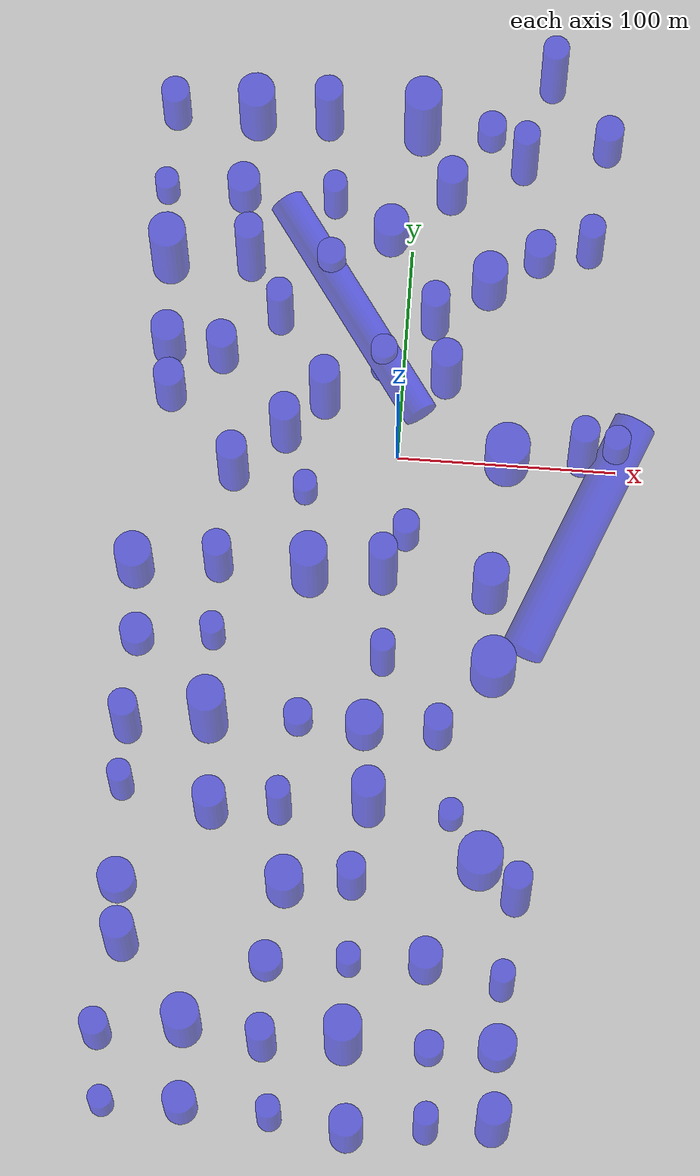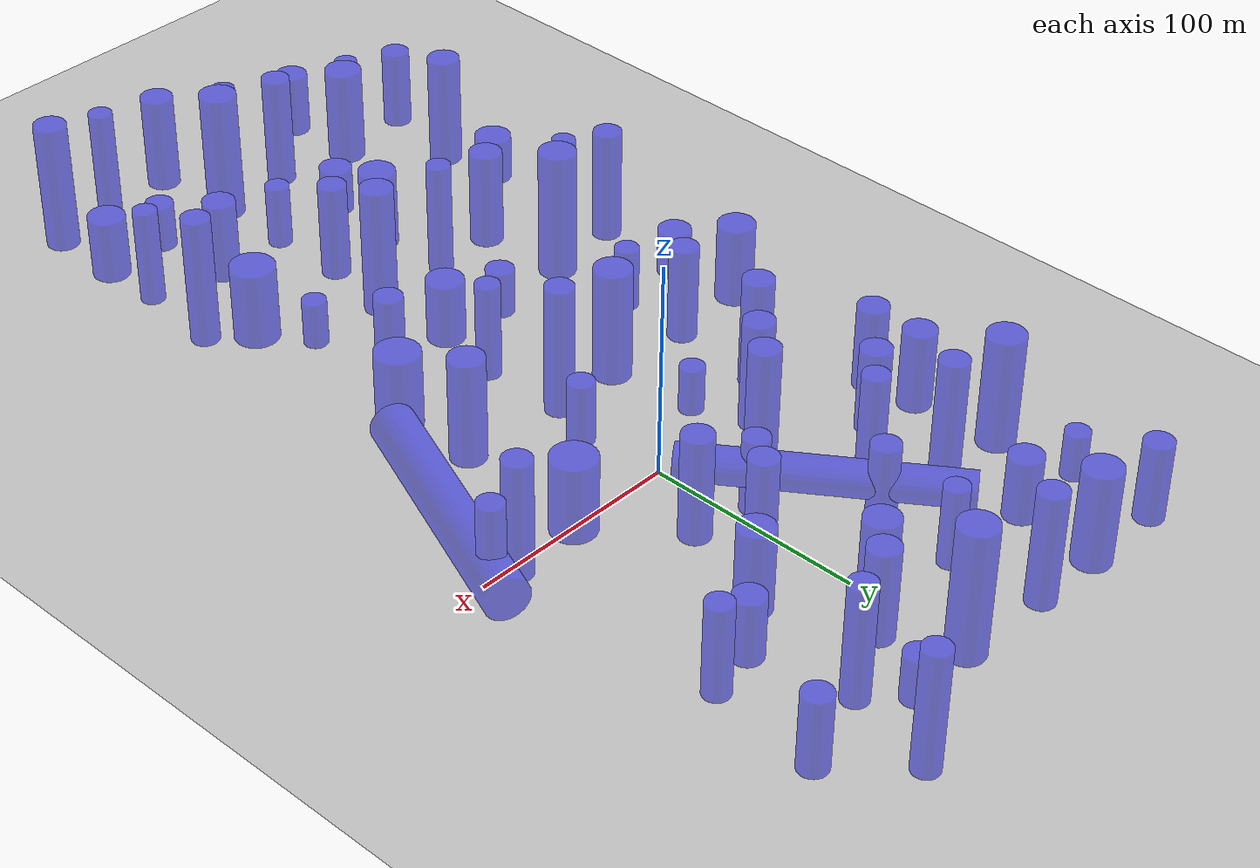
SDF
<sdf version="1.6">
 <world name="default">
  <model name="ground_plane">
   <static>1</static>
   <link name="link">
    <collision name="collision">
     <geometry><plane><normal>0 0 1</normal><size>1400.0 1400.0</size></plane></geometry>
     <surface><friction><ode><mu>100</mu><mu2>50</mu2></ode></friction></surface>
    </collision>
    <visual name="visual">
     <cast_shadows>0</cast_shadows>
     <geometry><plane><normal>0 0 1</normal><size>1400.0 1400.0</size></plane></geometry>
     <material>
      <script><uri>file://media/materials/scripts/gazebo.material</uri><name>Gazebo/Grey</name></script>
     </material>
    </visual>
   </link>
  </model>
  <model name="suav1">
   <link name="base_link">
    <inertial>
     <mass>0.1</mass>
     <inertia><ixx>1</ixx><ixy>0</ixy><ixz>0</ixz><iyy>1</iyy><iyz>0</iyz><izz>1</izz></inertia>
    </inertial>
    <collision name="base_link_fixed_joint_lump__body_link_collision">
     <geometry>
      <mesh>
       <scale>0.1 0.1 0.1</scale>
       <uri>package://simple_airplane_description/meshes/simple_airplane.dae</uri>
      </mesh>
     </geometry>
    </collision>
    <visual name="base_link_fixed_joint_lump__base_visual_visual">
     <geometry>
      <mesh>
       <scale>0.1 0.1 0.1</scale>
       <uri>package://simple_airplane_description/meshes/simple_airplane.dae</uri>
      </mesh>
     </geometry>
    </visual>
    <gravity>0</gravity>
    <gravity>0</gravity>
    <visual name="front_camera_housing">
     <pose>0 0 0.015 0 -0 0</pose>
     <geometry><box><size>0.04 0.05 0.04</size></box></geometry>
    </visual>
    <visual name="front_camera_lens">
     <pose>0.025 0 0.015 0 1.5708 0</pose>
     <geometry><cylinder><length>0.01</length><radius>0.012</radius></cylinder></geometry>
    </visual>
    <sensor name="front_camera" type="camera">
     <pose>0.03 0 0.015 0 0 0</pose>
     <always_on>true</always_on>
     <update_rate>15</update_rate>
     <visualize>false</visualize>
     <camera name="front_camera">
      <horizontal_fov>1.5707963267948966</horizontal_fov>
      <image><width>640</width><height>360</height><format>R8G8B8</format></image>
      <clip><near>0.05</near><far>300</far></clip>
     </camera>
     <plugin filename="libgazebo_ros_camera.so" name="front_camera_controller">
      <robotNamespace>/suav1</robotNamespace>
      <cameraName>front_camera</cameraName>
      <imageTopicName>image_raw</imageTopicName>
      <cameraInfoTopicName>camera_info</cameraInfoTopicName>
      <frameName>front_camera_optical_frame</frameName>
      <updateRate>15.0</updateRate>
     </plugin>
    </sensor>
   </link>
   <static>0</static>
   <plugin name="object_controller" filename="libgazebo_ros_planar_move_with_banking_and_pitching_plugin1.so">
    <commandTopic>cmd_vel</commandTopic>
    <odometryTopic>odom</odometryTopic>
    <odometryFrame>odom</odometryFrame>
    <odometryRate>80.0</odometryRate>
    <robotBaseFrame>base_link</robotBaseFrame>
    <robotNamespace>/suav1/</robotNamespace>
   </plugin>
   <pose>0 0 2 0 -0 0</pose>
  </model>
  <model name="static_obs1">
   <static>true</static>
   <pose>50 0 18.13715 0 0 0</pose>
   <link name="link">
    <inertial>
     <mass>1</mass>
     <inertia><ixx>0.145833</ixx><ixy>0</ixy><ixz>0</ixz><iyy>0.145833</iyy><iyz>0</iyz><izz>0.125</izz></inertia>
    </inertial>
    <collision name="collision">
     <geometry><cylinder><radius>10.1458</radius><length>36.2743</length></cylinder></geometry>
    </collision>
    <visual name="visual">
     <geometry><cylinder><radius>10.1458</radius><length>36.2743</length></cylinder></geometry>
     <material><ambient>0 0 1 1</ambient><diffuse>0 0 1 1</diffuse></material>
     <transparency>0.5</transparency>
    </visual>
   </link>
  </model>
  <model name="unit_cylinder_clone_1">
   <static>true</static>
   <pose>50.0229 -100.025 18.13715 0 0 0</pose>
   <link name="link">
    <inertial>
     <mass>1</mass>
     <inertia><ixx>0.145833</ixx><ixy>0</ixy><ixz>0</ixz><iyy>0.145833</iyy><iyz>0</iyz><izz>0.125</izz></inertia>
    </inertial>
    <collision name="collision">
     <geometry><cylinder><radius>10.1458</radius><length>36.2743</length></cylinder></geometry>
    </collision>
    <visual name="visual">
     <geometry><cylinder><radius>10.1458</radius><length>36.2743</length></cylinder></geometry>
     <material><ambient>0 0 1 1</ambient><diffuse>0 0 1 1</diffuse></material>
     <transparency>0.5</transparency>
    </visual>
   </link>
  </model>
  <model name="unit_cylinder_clone_3_clone_0">
   <static>true</static>
   <pose>50.0229 -190.025 18.13715 0 0 0</pose>
   <link name="link">
    <inertial>
     <mass>1</mass>
     <inertia><ixx>0.145833</ixx><ixy>0</ixy><ixz>0</ixz><iyy>0.145833</iyy><iyz>0</iyz><izz>0.125</izz></inertia>
    </inertial>
    <collision name="collision">
     <geometry><cylinder><radius>10.1458</radius><length>36.2743</length></cylinder></geometry>
    </collision>
    <visual name="visual">
     <geometry><cylinder><radius>10.1458</radius><length>36.2743</length></cylinder></geometry>
     <material><ambient>0 0 1 1</ambient><diffuse>0 0 1 1</diffuse></material>
     <transparency>0.5</transparency>
    </visual>
   </link>
  </model>
  <model name="static_obs13">
   <static>true</static>
   <pose>6.27 -38.06 15.0 0 0 0</pose>
   <link name="link">
    <gravity>false</gravity>
    <collision name="collision">
     <geometry><cylinder><radius>6.0</radius><length>30.0</length></cylinder></geometry>
    </collision>
    <visual name="visual">
     <geometry><cylinder><radius>6.0</radius><length>30.0</length></cylinder></geometry>
     <material><ambient>0 0 1 1</ambient><diffuse>0 0 1 1</diffuse></material>
     <transparency>0.5</transparency>
    </visual>
   </link>
  </model>
  <model name="static_obs14">
   <static>true</static>
   <pose>19.63 36.94 25.0 0 0 0</pose>
   <link name="link">
    <gravity>false</gravity>
    <collision name="collision">
     <geometry><cylinder><radius>7.0</radius><length>50.0</length></cylinder></geometry>
    </collision>
    <visual name="visual">
     <geometry><cylinder><radius>7.0</radius><length>50.0</length></cylinder></geometry>
     <material><ambient>0 0 1 1</ambient><diffuse>0 0 1 1</diffuse></material>
     <transparency>0.5</transparency>
    </visual>
   </link>
  </model>
  <model name="static_obs15">
   <static>true</static>
   <pose>46.3 -63.21 25.0 0 0 0</pose>
   <link name="link">
    <gravity>false</gravity>
    <collision name="collision">
     <geometry><cylinder><radius>8.0</radius><length>50.0</length></cylinder></geometry>
    </collision>
    <visual name="visual">
     <geometry><cylinder><radius>8.0</radius><length>50.0</length></cylinder></geometry>
     <material><ambient>0 0 1 1</ambient><diffuse>0 0 1 1</diffuse></material>
     <transparency>0.5</transparency>
    </visual>
   </link>
  </model>
  <model name="static_obs16">
   <static>true</static>
   <pose>84.32 3.23 28.0 0 0 0</pose>
   <link name="link">
    <gravity>false</gravity>
    <collision name="collision">
     <geometry><cylinder><radius>6.5</radius><length>56.0</length></cylinder></geometry>
    </collision>
    <visual name="visual">
     <geometry><cylinder><radius>6.5</radius><length>56.0</length></cylinder></geometry>
     <material><ambient>0 0 1 1</ambient><diffuse>0 0 1 1</diffuse></material>
     <transparency>0.5</transparency>
    </visual>
   </link>
  </model>
  <model name="static_obs17">
   <static>true</static>
   <pose>99.32 3.91 22.0 0 0 0</pose>
   <link name="link">
    <gravity>false</gravity>
    <collision name="collision">
     <geometry><cylinder><radius>6.0</radius><length>44.0</length></cylinder></geometry>
    </collision>
    <visual name="visual">
     <geometry><cylinder><radius>6.0</radius><length>44.0</length></cylinder></geometry>
     <material><ambient>0 0 1 1</ambient><diffuse>0 0 1 1</diffuse></material>
     <transparency>0.5</transparency>
    </visual>
   </link>
  </model>
  <model name="static_obs79">
   <static>true</static>
   <pose>87.27 154.48 18.0 0 0 0</pose>
   <link name="link">
    <gravity>false</gravity>
    <collision name="collision">
     <geometry><cylinder><radius>6.5</radius><length>36.0</length></cylinder></geometry>
    </collision>
    <visual name="visual">
     <geometry><cylinder><radius>6.5</radius><length>36.0</length></cylinder></geometry>
     <material><ambient>0 0 1 1</ambient><diffuse>0 0 1 1</diffuse></material>
     <transparency>0.5</transparency>
    </visual>
   </link>
  </model>
  <model name="static_obs80">
   <static>true</static>
   <pose>82.03 103.76 22.0 0 0 0</pose>
   <link name="link">
    <gravity>false</gravity>
    <collision name="collision">
     <geometry><cylinder><radius>6.0</radius><length>44.0</length></cylinder></geometry>
    </collision>
    <visual name="visual">
     <geometry><cylinder><radius>6.0</radius><length>44.0</length></cylinder></geometry>
     <material><ambient>0 0 1 1</ambient><diffuse>0 0 1 1</diffuse></material>
     <transparency>0.5</transparency>
    </visual>
   </link>
  </model>
  <model name="static_obs81">
   <static>true</static>
   <pose>49.15 142.43 28.0 0 0 0</pose>
   <link name="link">
    <gravity>false</gravity>
    <collision name="collision">
     <geometry><cylinder><radius>6.0</radius><length>56.0</length></cylinder></geometry>
    </collision>
    <visual name="visual">
     <geometry><cylinder><radius>6.0</radius><length>56.0</length></cylinder></geometry>
     <material><ambient>0 0 1 1</ambient><diffuse>0 0 1 1</diffuse></material>
     <transparency>0.5</transparency>
    </visual>
   </link>
  </model>
  <model name="static_obs82">
   <static>true</static>
   <pose>58.9 98.52 15.0 0 0 0</pose>
   <link name="link">
    <gravity>false</gravity>
    <collision name="collision">
     <geometry><cylinder><radius>7.0</radius><length>30.0</length></cylinder></geometry>
    </collision>
    <visual name="visual">
     <geometry><cylinder><radius>7.0</radius><length>30.0</length></cylinder></geometry>
     <material><ambient>0 0 1 1</ambient><diffuse>0 0 1 1</diffuse></material>
     <transparency>0.5</transparency>
    </visual>
   </link>
  </model>
  <model name="static_obs83">
   <static>true</static>
   <pose>16.29 126.5 22.0 0 0 0</pose>
   <link name="link">
    <gravity>false</gravity>
    <collision name="collision">
     <geometry><cylinder><radius>7.0</radius><length>44.0</length></cylinder></geometry>
    </collision>
    <visual name="visual">
     <geometry><cylinder><radius>7.0</radius><length>44.0</length></cylinder></geometry>
     <material><ambient>0 0 1 1</ambient><diffuse>0 0 1 1</diffuse></material>
     <transparency>0.5</transparency>
    </visual>
   </link>
  </model>
  <model name="static_obs84">
   <static>true</static>
   <pose>36.63 82.13 20.0 0 0 0</pose>
   <link name="link">
    <gravity>false</gravity>
    <collision name="collision">
     <geometry><cylinder><radius>8.0</radius><length>40.0</length></cylinder></geometry>
    </collision>
    <visual name="visual">
     <geometry><cylinder><radius>8.0</radius><length>40.0</length></cylinder></geometry>
     <material><ambient>0 0 1 1</ambient><diffuse>0 0 1 1</diffuse></material>
     <transparency>0.5</transparency>
    </visual>
   </link>
  </model>
  <model name="static_obs85">
   <static>true</static>
   <pose>-10.38 105.13 15.0 0 0 0</pose>
   <link name="link">
    <gravity>false</gravity>
    <collision name="collision">
     <geometry><cylinder><radius>8.0</radius><length>30.0</length></cylinder></geometry>
    </collision>
    <visual name="visual">
     <geometry><cylinder><radius>8.0</radius><length>30.0</length></cylinder></geometry>
     <material><ambient>0 0 1 1</ambient><diffuse>0 0 1 1</diffuse></material>
     <transparency>0.5</transparency>
    </visual>
   </link>
  </model>
  <model name="static_obs86">
   <static>true</static>
   <pose>12.64 64.42 25.0 0 0 0</pose>
   <link name="link">
    <gravity>false</gravity>
    <collision name="collision">
     <geometry><cylinder><radius>6.5</radius><length>50.0</length></cylinder></geometry>
    </collision>
    <visual name="visual">
     <geometry><cylinder><radius>6.5</radius><length>50.0</length></cylinder></geometry>
     <material><ambient>0 0 1 1</ambient><diffuse>0 0 1 1</diffuse></material>
     <transparency>0.5</transparency>
    </visual>
   </link>
  </model>
  <model name="static_obs87">
   <static>true</static>
   <pose>-36.55 85.03 20.0 0 0 0</pose>
   <link name="link">
    <gravity>false</gravity>
    <collision name="collision">
     <geometry><cylinder><radius>6.5</radius><length>40.0</length></cylinder></geometry>
    </collision>
    <visual name="visual">
     <geometry><cylinder><radius>6.5</radius><length>40.0</length></cylinder></geometry>
     <material><ambient>0 0 1 1</ambient><diffuse>0 0 1 1</diffuse></material>
     <transparency>0.5</transparency>
    </visual>
   </link>
  </model>
  <model name="static_obs88">
   <static>true</static>
   <pose>-9.31 42.34 18.0 0 0 0</pose>
   <link name="link">
    <gravity>false</gravity>
    <collision name="collision">
     <geometry><cylinder><radius>6.0</radius><length>36.0</length></cylinder></geometry>
    </collision>
    <visual name="visual">
     <geometry><cylinder><radius>6.0</radius><length>36.0</length></cylinder></geometry>
     <material><ambient>0 0 1 1</ambient><diffuse>0 0 1 1</diffuse></material>
     <transparency>0.5</transparency>
    </visual>
   </link>
  </model>
  <model name="static_obs89">
   <static>true</static>
   <pose>-58.47 61.52 25.0 0 0 0</pose>
   <link name="link">
    <gravity>false</gravity>
    <collision name="collision">
     <geometry><cylinder><radius>6.0</radius><length>50.0</length></cylinder></geometry>
    </collision>
    <visual name="visual">
     <geometry><cylinder><radius>6.0</radius><length>50.0</length></cylinder></geometry>
     <material><ambient>0 0 1 1</ambient><diffuse>0 0 1 1</diffuse></material>
     <transparency>0.5</transparency>
    </visual>
   </link>
  </model>
  <model name="static_obs90">
   <static>true</static>
   <pose>-35.22 23.32 28.0 0 0 0</pose>
   <link name="link">
    <gravity>false</gravity>
    <collision name="collision">
     <geometry><cylinder><radius>7.0</radius><length>56.0</length></cylinder></geometry>
    </collision>
    <visual name="visual">
     <geometry><cylinder><radius>7.0</radius><length>56.0</length></cylinder></geometry>
     <material><ambient>0 0 1 1</ambient><diffuse>0 0 1 1</diffuse></material>
     <transparency>0.5</transparency>
    </visual>
   </link>
  </model>
  <model name="static_obs91">
   <static>true</static>
   <pose>-83.74 41.86 20.0 0 0 0</pose>
   <link name="link">
    <gravity>false</gravity>
    <collision name="collision">
     <geometry><cylinder><radius>7.0</radius><length>40.0</length></cylinder></geometry>
    </collision>
    <visual name="visual">
     <geometry><cylinder><radius>7.0</radius><length>40.0</length></cylinder></geometry>
     <material><ambient>0 0 1 1</ambient><diffuse>0 0 1 1</diffuse></material>
     <transparency>0.5</transparency>
    </visual>
   </link>
  </model>
  <model name="static_obs92">
   <static>true</static>
   <pose>-52.05 5.82 26.0 0 0 0</pose>
   <link name="link">
    <gravity>false</gravity>
    <collision name="collision">
     <geometry><cylinder><radius>7.0</radius><length>52.0</length></cylinder></geometry>
    </collision>
    <visual name="visual">
     <geometry><cylinder><radius>7.0</radius><length>52.0</length></cylinder></geometry>
     <material><ambient>0 0 1 1</ambient><diffuse>0 0 1 1</diffuse></material>
     <transparency>0.5</transparency>
    </visual>
   </link>
  </model>
  <model name="static_obs93">
   <static>true</static>
   <pose>-106.27 22.05 20.0 0 0 0</pose>
   <link name="link">
    <gravity>false</gravity>
    <collision name="collision">
     <geometry><cylinder><radius>7.0</radius><length>40.0</length></cylinder></geometry>
    </collision>
    <visual name="visual">
     <geometry><cylinder><radius>7.0</radius><length>40.0</length></cylinder></geometry>
     <material><ambient>0 0 1 1</ambient><diffuse>0 0 1 1</diffuse></material>
     <transparency>0.5</transparency>
    </visual>
   </link>
  </model>
  <model name="static_obs94">
   <static>true</static>
   <pose>-74.57 -14.0 26.0 0 0 0</pose>
   <link name="link">
    <gravity>false</gravity>
    <collision name="collision">
     <geometry><cylinder><radius>7.0</radius><length>52.0</length></cylinder></geometry>
    </collision>
    <visual name="visual">
     <geometry><cylinder><radius>7.0</radius><length>52.0</length></cylinder></geometry>
     <material><ambient>0 0 1 1</ambient><diffuse>0 0 1 1</diffuse></material>
     <transparency>0.5</transparency>
    </visual>
   </link>
  </model>
  <model name="static_obs95">
   <static>true</static>
   <pose>-110.87 -308.64 11.0 0 0 0</pose>
   <link name="link">
    <gravity>false</gravity>
    <collision name="collision">
     <geometry><cylinder><radius>5.5</radius><length>22.0</length></cylinder></geometry>
    </collision>
    <visual name="visual">
     <geometry><cylinder><radius>5.5</radius><length>22.0</length></cylinder></geometry>
     <material><ambient>0 0 1 1</ambient><diffuse>0 0 1 1</diffuse></material>
     <transparency>0.5</transparency>
    </visual>
   </link>
  </model>
  <model name="static_obs96">
   <static>true</static>
   <pose>-75.55 -307.74 15.0 0 0 0</pose>
   <link name="link">
    <gravity>false</gravity>
    <collision name="collision">
     <geometry><cylinder><radius>7.5</radius><length>30.0</length></cylinder></geometry>
    </collision>
    <visual name="visual">
     <geometry><cylinder><radius>7.5</radius><length>30.0</length></cylinder></geometry>
     <material><ambient>0 0 1 1</ambient><diffuse>0 0 1 1</diffuse></material>
     <transparency>0.5</transparency>
    </visual>
   </link>
  </model>
  <model name="static_obs97">
   <static>true</static>
   <pose>-35.9 -310.2 19.0 0 0 0</pose>
   <link name="link">
    <gravity>false</gravity>
    <collision name="collision">
     <geometry><cylinder><radius>5.5</radius><length>38.0</length></cylinder></geometry>
    </collision>
    <visual name="visual">
     <geometry><cylinder><radius>5.5</radius><length>38.0</length></cylinder></geometry>
     <material><ambient>0 0 1 1</ambient><diffuse>0 0 1 1</diffuse></material>
     <transparency>0.5</transparency>
    </visual>
   </link>
  </model>
  <model name="static_obs98">
   <static>true</static>
   <pose>-1.21 -315.36 23.0 0 0 0</pose>
   <link name="link">
    <gravity>false</gravity>
    <collision name="collision">
     <geometry><cylinder><radius>7.5</radius><length>46.0</length></cylinder></geometry>
    </collision>
    <visual name="visual">
     <geometry><cylinder><radius>7.5</radius><length>46.0</length></cylinder></geometry>
     <material><ambient>0 0 1 1</ambient><diffuse>0 0 1 1</diffuse></material>
     <transparency>0.5</transparency>
    </visual>
   </link>
  </model>
  <model name="static_obs99">
   <static>true</static>
   <pose>33.71 -311.24 27.0 0 0 0</pose>
   <link name="link">
    <gravity>false</gravity>
    <collision name="collision">
     <geometry><cylinder><radius>5.5</radius><length>54.0</length></cylinder></geometry>
    </collision>
    <visual name="visual">
     <geometry><cylinder><radius>5.5</radius><length>54.0</length></cylinder></geometry>
     <material><ambient>0 0 1 1</ambient><diffuse>0 0 1 1</diffuse></material>
     <transparency>0.5</transparency>
    </visual>
   </link>
  </model>
  <model name="static_obs100">
   <static>true</static>
   <pose>63.25 -308.37 31.0 0 0 0</pose>
   <link name="link">
    <gravity>false</gravity>
    <collision name="collision">
     <geometry><cylinder><radius>7.5</radius><length>62.0</length></cylinder></geometry>
    </collision>
    <visual name="visual">
     <geometry><cylinder><radius>7.5</radius><length>62.0</length></cylinder></geometry>
     <material><ambient>0 0 1 1</ambient><diffuse>0 0 1 1</diffuse></material>
     <transparency>0.5</transparency>
    </visual>
   </link>
  </model>
  <model name="static_obs112">
   <static>true</static>
   <pose>-115.51 -277.75 19.0 0 0 0</pose>
   <link name="link">
    <gravity>false</gravity>
    <collision name="collision">
     <geometry><cylinder><radius>6.5</radius><length>38.0</length></cylinder></geometry>
    </collision>
    <visual name="visual">
     <geometry><cylinder><radius>6.5</radius><length>38.0</length></cylinder></geometry>
     <material><ambient>0 0 1 1</ambient><diffuse>0 0 1 1</diffuse></material>
     <transparency>0.5</transparency>
    </visual>
   </link>
  </model>
  <model name="static_obs113">
   <static>true</static>
   <pose>-77.39 -272.2 23.0 0 0 0</pose>
   <link name="link">
    <gravity>false</gravity>
    <collision name="collision">
     <geometry><cylinder><radius>8.5</radius><length>46.0</length></cylinder></geometry>
    </collision>
    <visual name="visual">
     <geometry><cylinder><radius>8.5</radius><length>46.0</length></cylinder></geometry>
     <material><ambient>0 0 1 1</ambient><diffuse>0 0 1 1</diffuse></material>
     <transparency>0.5</transparency>
    </visual>
   </link>
  </model>
  <model name="static_obs114">
   <static>true</static>
   <pose>-41.48 -278.18 27.0 0 0 0</pose>
   <link name="link">
    <gravity>false</gravity>
    <collision name="collision">
     <geometry><cylinder><radius>6.5</radius><length>54.0</length></cylinder></geometry>
    </collision>
    <visual name="visual">
     <geometry><cylinder><radius>6.5</radius><length>54.0</length></cylinder></geometry>
     <material><ambient>0 0 1 1</ambient><diffuse>0 0 1 1</diffuse></material>
     <transparency>0.5</transparency>
    </visual>
   </link>
  </model>
  <model name="static_obs115">
   <static>true</static>
   <pose>-5.31 -275.32 31.0 0 0 0</pose>
   <link name="link">
    <gravity>false</gravity>
    <collision name="collision">
     <geometry><cylinder><radius>8.5</radius><length>62.0</length></cylinder></geometry>
    </collision>
    <visual name="visual">
     <geometry><cylinder><radius>8.5</radius><length>62.0</length></cylinder></geometry>
     <material><ambient>0 0 1 1</ambient><diffuse>0 0 1 1</diffuse></material>
     <transparency>0.5</transparency>
    </visual>
   </link>
  </model>
  <model name="static_obs116">
   <static>true</static>
   <pose>32.82 -275.02 11.0 0 0 0</pose>
   <link name="link">
    <gravity>false</gravity>
    <collision name="collision">
     <geometry><cylinder><radius>6.5</radius><length>22.0</length></cylinder></geometry>
    </collision>
    <visual name="visual">
     <geometry><cylinder><radius>6.5</radius><length>22.0</length></cylinder></geometry>
     <material><ambient>0 0 1 1</ambient><diffuse>0 0 1 1</diffuse></material>
     <transparency>0.5</transparency>
    </visual>
   </link>
  </model>
  <model name="static_obs117">
   <static>true</static>
   <pose>63.17 -273.44 15.0 0 0 0</pose>
   <link name="link">
    <gravity>false</gravity>
    <collision name="collision">
     <geometry><cylinder><radius>8.5</radius><length>30.0</length></cylinder></geometry>
    </collision>
    <visual name="visual">
     <geometry><cylinder><radius>8.5</radius><length>30.0</length></cylinder></geometry>
     <material><ambient>0 0 1 1</ambient><diffuse>0 0 1 1</diffuse></material>
     <transparency>0.5</transparency>
    </visual>
   </link>
  </model>
  <model name="static_obs122">
   <static>true</static>
   <pose>-107.83 -236.15 27.0 0 0 0</pose>
   <link name="link">
    <gravity>false</gravity>
    <collision name="collision">
     <geometry><cylinder><radius>7.5</radius><length>54.0</length></cylinder></geometry>
    </collision>
    <visual name="visual">
     <geometry><cylinder><radius>7.5</radius><length>54.0</length></cylinder></geometry>
     <material><ambient>0 0 1 1</ambient><diffuse>0 0 1 1</diffuse></material>
     <transparency>0.5</transparency>
    </visual>
   </link>
  </model>
  <model name="static_obs123">
   <static>true</static>
   <pose>-42.58 -240.64 11.0 0 0 0</pose>
   <link name="link">
    <gravity>false</gravity>
    <collision name="collision">
     <geometry><cylinder><radius>7.5</radius><length>22.0</length></cylinder></geometry>
    </collision>
    <visual name="visual">
     <geometry><cylinder><radius>7.5</radius><length>22.0</length></cylinder></geometry>
     <material><ambient>0 0 1 1</ambient><diffuse>0 0 1 1</diffuse></material>
     <transparency>0.5</transparency>
    </visual>
   </link>
  </model>
  <model name="static_obs124">
   <static>true</static>
   <pose>-5.61 -238.23 15.0 0 0 0</pose>
   <link name="link">
    <gravity>false</gravity>
    <collision name="collision">
     <geometry><cylinder><radius>5.5</radius><length>30.0</length></cylinder></geometry>
    </collision>
    <visual name="visual">
     <geometry><cylinder><radius>5.5</radius><length>30.0</length></cylinder></geometry>
     <material><ambient>0 0 1 1</ambient><diffuse>0 0 1 1</diffuse></material>
     <transparency>0.5</transparency>
    </visual>
   </link>
  </model>
  <model name="static_obs125">
   <static>true</static>
   <pose>28.71 -237.13 19.0 0 0 0</pose>
   <link name="link">
    <gravity>false</gravity>
    <collision name="collision">
     <geometry><cylinder><radius>7.5</radius><length>38.0</length></cylinder></geometry>
    </collision>
    <visual name="visual">
     <geometry><cylinder><radius>7.5</radius><length>38.0</length></cylinder></geometry>
     <material><ambient>0 0 1 1</ambient><diffuse>0 0 1 1</diffuse></material>
     <transparency>0.5</transparency>
    </visual>
   </link>
  </model>
  <model name="static_obs126">
   <static>true</static>
   <pose>63.3 -244.5 23.0 0 0 0</pose>
   <link name="link">
    <gravity>false</gravity>
    <collision name="collision">
     <geometry><cylinder><radius>5.5</radius><length>46.0</length></cylinder></geometry>
    </collision>
    <visual name="visual">
     <geometry><cylinder><radius>5.5</radius><length>46.0</length></cylinder></geometry>
     <material><ambient>0 0 1 1</ambient><diffuse>0 0 1 1</diffuse></material>
     <transparency>0.5</transparency>
    </visual>
   </link>
  </model>
  <model name="static_obs130">
   <static>true</static>
   <pose>-111.97 -208.54 11.0 0 0 0</pose>
   <link name="link">
    <gravity>false</gravity>
    <collision name="collision">
     <geometry><cylinder><radius>8.5</radius><length>22.0</length></cylinder></geometry>
    </collision>
    <visual name="visual">
     <geometry><cylinder><radius>8.5</radius><length>22.0</length></cylinder></geometry>
     <material><ambient>0 0 1 1</ambient><diffuse>0 0 1 1</diffuse></material>
     <transparency>0.5</transparency>
    </visual>
   </link>
  </model>
  <model name="static_obs131">
   <static>true</static>
   <pose>-36.71 -205.63 19.0 0 0 0</pose>
   <link name="link">
    <gravity>false</gravity>
    <collision name="collision">
     <geometry><cylinder><radius>8.5</radius><length>38.0</length></cylinder></geometry>
    </collision>
    <visual name="visual">
     <geometry><cylinder><radius>8.5</radius><length>38.0</length></cylinder></geometry>
     <material><ambient>0 0 1 1</ambient><diffuse>0 0 1 1</diffuse></material>
     <transparency>0.5</transparency>
    </visual>
   </link>
  </model>
  <model name="static_obs132">
   <static>true</static>
   <pose>-6.84 -201.93 23.0 0 0 0</pose>
   <link name="link">
    <gravity>false</gravity>
    <collision name="collision">
     <geometry><cylinder><radius>6.5</radius><length>46.0</length></cylinder></geometry>
    </collision>
    <visual name="visual">
     <geometry><cylinder><radius>6.5</radius><length>46.0</length></cylinder></geometry>
     <material><ambient>0 0 1 1</ambient><diffuse>0 0 1 1</diffuse></material>
     <transparency>0.5</transparency>
    </visual>
   </link>
  </model>
  <model name="static_obs133">
   <static>true</static>
   <pose>66.97 -204.44 31.0 0 0 0</pose>
   <link name="link">
    <gravity>false</gravity>
    <collision name="collision">
     <geometry><cylinder><radius>6.5</radius><length>62.0</length></cylinder></geometry>
    </collision>
    <visual name="visual">
     <geometry><cylinder><radius>6.5</radius><length>62.0</length></cylinder></geometry>
     <material><ambient>0 0 1 1</ambient><diffuse>0 0 1 1</diffuse></material>
     <transparency>0.5</transparency>
    </visual>
   </link>
  </model>
  <model name="static_obs138">
   <static>true</static>
   <pose>-113.57 -164.22 19.0 0 0 0</pose>
   <link name="link">
    <gravity>false</gravity>
    <collision name="collision">
     <geometry><cylinder><radius>5.5</radius><length>38.0</length></cylinder></geometry>
    </collision>
    <visual name="visual">
     <geometry><cylinder><radius>5.5</radius><length>38.0</length></cylinder></geometry>
     <material><ambient>0 0 1 1</ambient><diffuse>0 0 1 1</diffuse></material>
     <transparency>0.5</transparency>
    </visual>
   </link>
  </model>
  <model name="static_obs139">
   <static>true</static>
   <pose>-72.51 -172.8 23.0 0 0 0</pose>
   <link name="link">
    <gravity>false</gravity>
    <collision name="collision">
     <geometry><cylinder><radius>7.5</radius><length>46.0</length></cylinder></geometry>
    </collision>
    <visual name="visual">
     <geometry><cylinder><radius>7.5</radius><length>46.0</length></cylinder></geometry>
     <material><ambient>0 0 1 1</ambient><diffuse>0 0 1 1</diffuse></material>
     <transparency>0.5</transparency>
    </visual>
   </link>
  </model>
  <model name="static_obs140">
   <static>true</static>
   <pose>-41.65 -170.67 27.0 0 0 0</pose>
   <link name="link">
    <gravity>false</gravity>
    <collision name="collision">
     <geometry><cylinder><radius>5.5</radius><length>54.0</length></cylinder></geometry>
    </collision>
    <visual name="visual">
     <geometry><cylinder><radius>5.5</radius><length>54.0</length></cylinder></geometry>
     <material><ambient>0 0 1 1</ambient><diffuse>0 0 1 1</diffuse></material>
     <transparency>0.5</transparency>
    </visual>
   </link>
  </model>
  <model name="static_obs141">
   <static>true</static>
   <pose>-1.73 -167.02 31.0 0 0 0</pose>
   <link name="link">
    <gravity>false</gravity>
    <collision name="collision">
     <geometry><cylinder><radius>7.5</radius><length>62.0</length></cylinder></geometry>
    </collision>
    <visual name="visual">
     <geometry><cylinder><radius>7.5</radius><length>62.0</length></cylinder></geometry>
     <material><ambient>0 0 1 1</ambient><diffuse>0 0 1 1</diffuse></material>
     <transparency>0.5</transparency>
    </visual>
   </link>
  </model>
  <model name="static_obs142">
   <static>true</static>
   <pose>35.51 -168.08 11.0 0 0 0</pose>
   <link name="link">
    <gravity>false</gravity>
    <collision name="collision">
     <geometry><cylinder><radius>5.5</radius><length>22.0</length></cylinder></geometry>
    </collision>
    <visual name="visual">
     <geometry><cylinder><radius>5.5</radius><length>22.0</length></cylinder></geometry>
     <material><ambient>0 0 1 1</ambient><diffuse>0 0 1 1</diffuse></material>
     <transparency>0.5</transparency>
    </visual>
   </link>
  </model>
  <model name="static_obs148">
   <static>true</static>
   <pose>-113.46 -136.8 27.0 0 0 0</pose>
   <link name="link">
    <gravity>false</gravity>
    <collision name="collision">
     <geometry><cylinder><radius>6.5</radius><length>54.0</length></cylinder></geometry>
    </collision>
    <visual name="visual">
     <geometry><cylinder><radius>6.5</radius><length>54.0</length></cylinder></geometry>
     <material><ambient>0 0 1 1</ambient><diffuse>0 0 1 1</diffuse></material>
     <transparency>0.5</transparency>
    </visual>
   </link>
  </model>
  <model name="static_obs149">
   <static>true</static>
   <pose>-76.57 -132.01 31.0 0 0 0</pose>
   <link name="link">
    <gravity>false</gravity>
    <collision name="collision">
     <geometry><cylinder><radius>8.5</radius><length>62.0</length></cylinder></geometry>
    </collision>
    <visual name="visual">
     <geometry><cylinder><radius>8.5</radius><length>62.0</length></cylinder></geometry>
     <material><ambient>0 0 1 1</ambient><diffuse>0 0 1 1</diffuse></material>
     <transparency>0.5</transparency>
    </visual>
   </link>
  </model>
  <model name="static_obs150">
   <static>true</static>
   <pose>-36.44 -127.96 11.0 0 0 0</pose>
   <link name="link">
    <gravity>false</gravity>
    <collision name="collision">
     <geometry><cylinder><radius>6.5</radius><length>22.0</length></cylinder></geometry>
    </collision>
    <visual name="visual">
     <geometry><cylinder><radius>6.5</radius><length>22.0</length></cylinder></geometry>
     <material><ambient>0 0 1 1</ambient><diffuse>0 0 1 1</diffuse></material>
     <transparency>0.5</transparency>
    </visual>
   </link>
  </model>
  <model name="static_obs151">
   <static>true</static>
   <pose>-6.19 -130.55 15.0 0 0 0</pose>
   <link name="link">
    <gravity>false</gravity>
    <collision name="collision">
     <geometry><cylinder><radius>8.5</radius><length>30.0</length></cylinder></geometry>
    </collision>
    <visual name="visual">
     <geometry><cylinder><radius>8.5</radius><length>30.0</length></cylinder></geometry>
     <material><ambient>0 0 1 1</ambient><diffuse>0 0 1 1</diffuse></material>
     <transparency>0.5</transparency>
    </visual>
   </link>
  </model>
  <model name="static_obs152">
   <static>true</static>
   <pose>27.09 -129.92 19.0 0 0 0</pose>
   <link name="link">
    <gravity>false</gravity>
    <collision name="collision">
     <geometry><cylinder><radius>6.5</radius><length>38.0</length></cylinder></geometry>
    </collision>
    <visual name="visual">
     <geometry><cylinder><radius>6.5</radius><length>38.0</length></cylinder></geometry>
     <material><ambient>0 0 1 1</ambient><diffuse>0 0 1 1</diffuse></material>
     <transparency>0.5</transparency>
    </visual>
   </link>
  </model>
  <model name="static_obs157">
   <static>true</static>
   <pose>-112.31 -94.38 11.0 0 0 0</pose>
   <link name="link">
    <gravity>false</gravity>
    <collision name="collision">
     <geometry><cylinder><radius>7.5</radius><length>22.0</length></cylinder></geometry>
    </collision>
    <visual name="visual">
     <geometry><cylinder><radius>7.5</radius><length>22.0</length></cylinder></geometry>
     <material><ambient>0 0 1 1</ambient><diffuse>0 0 1 1</diffuse></material>
     <transparency>0.5</transparency>
    </visual>
   </link>
  </model>
  <model name="static_obs158">
   <static>true</static>
   <pose>-77.94 -91.38 15.0 0 0 0</pose>
   <link name="link">
    <gravity>false</gravity>
    <collision name="collision">
     <geometry><cylinder><radius>5.5</radius><length>30.0</length></cylinder></geometry>
    </collision>
    <visual name="visual">
     <geometry><cylinder><radius>5.5</radius><length>30.0</length></cylinder></geometry>
     <material><ambient>0 0 1 1</ambient><diffuse>0 0 1 1</diffuse></material>
     <transparency>0.5</transparency>
    </visual>
   </link>
  </model>
  <model name="static_obs159">
   <static>true</static>
   <pose>-0.14 -98.31 23.0 0 0 0</pose>
   <link name="link">
    <gravity>false</gravity>
    <collision name="collision">
     <geometry><cylinder><radius>5.5</radius><length>46.0</length></cylinder></geometry>
    </collision>
    <visual name="visual">
     <geometry><cylinder><radius>5.5</radius><length>46.0</length></cylinder></geometry>
     <material><ambient>0 0 1 1</ambient><diffuse>0 0 1 1</diffuse></material>
     <transparency>0.5</transparency>
    </visual>
   </link>
  </model>
  <model name="static_obs168">
   <static>true</static>
   <pose>-115.88 -61.81 19.0 0 0 0</pose>
   <link name="link">
    <gravity>false</gravity>
    <collision name="collision">
     <geometry><cylinder><radius>8.5</radius><length>38.0</length></cylinder></geometry>
    </collision>
    <visual name="visual">
     <geometry><cylinder><radius>8.5</radius><length>38.0</length></cylinder></geometry>
     <material><ambient>0 0 1 1</ambient><diffuse>0 0 1 1</diffuse></material>
     <transparency>0.5</transparency>
    </visual>
   </link>
  </model>
  <model name="static_obs169">
   <static>true</static>
   <pose>-77.95 -58.32 23.0 0 0 0</pose>
   <link name="link">
    <gravity>false</gravity>
    <collision name="collision">
     <geometry><cylinder><radius>6.5</radius><length>46.0</length></cylinder></geometry>
    </collision>
    <visual name="visual">
     <geometry><cylinder><radius>6.5</radius><length>46.0</length></cylinder></geometry>
     <material><ambient>0 0 1 1</ambient><diffuse>0 0 1 1</diffuse></material>
     <transparency>0.5</transparency>
    </visual>
   </link>
  </model>
  <model name="static_obs170">
   <static>true</static>
   <pose>-36.22 -60.54 27.0 0 0 0</pose>
   <link name="link">
    <gravity>false</gravity>
    <collision name="collision">
     <geometry><cylinder><radius>8.5</radius><length>54.0</length></cylinder></geometry>
    </collision>
    <visual name="visual">
     <geometry><cylinder><radius>8.5</radius><length>54.0</length></cylinder></geometry>
     <material><ambient>0 0 1 1</ambient><diffuse>0 0 1 1</diffuse></material>
     <transparency>0.5</transparency>
    </visual>
   </link>
  </model>
  <model name="static_obs171">
   <static>true</static>
   <pose>-2.79 -59.08 31.0 0 0 0</pose>
   <link name="link">
    <gravity>false</gravity>
    <collision name="collision">
     <geometry><cylinder><radius>6.5</radius><length>62.0</length></cylinder></geometry>
    </collision>
    <visual name="visual">
     <geometry><cylinder><radius>6.5</radius><length>62.0</length></cylinder></geometry>
     <material><ambient>0 0 1 1</ambient><diffuse>0 0 1 1</diffuse></material>
     <transparency>0.5</transparency>
    </visual>
   </link>
  </model>
  <model name="static_obs175">
   <static>true</static>
   <pose>-41.19 -19.81 11.0 0 0 0</pose>
   <link name="link">
    <gravity>false</gravity>
    <collision name="collision">
     <geometry><cylinder><radius>5.5</radius><length>22.0</length></cylinder></geometry>
    </collision>
    <visual name="visual">
     <geometry><cylinder><radius>5.5</radius><length>22.0</length></cylinder></geometry>
     <material><ambient>0 0 1 1</ambient><diffuse>0 0 1 1</diffuse></material>
     <transparency>0.5</transparency>
    </visual>
   </link>
  </model>
  <model name="static_obs190">
   <static>true</static>
   <pose>-108.86 44.77 19.0 0 0 0</pose>
   <link name="link">
    <gravity>false</gravity>
    <collision name="collision">
     <geometry><cylinder><radius>7.5</radius><length>38.0</length></cylinder></geometry>
    </collision>
    <visual name="visual">
     <geometry><cylinder><radius>7.5</radius><length>38.0</length></cylinder></geometry>
     <material><ambient>0 0 1 1</ambient><diffuse>0 0 1 1</diffuse></material>
     <transparency>0.5</transparency>
    </visual>
   </link>
  </model>
  <model name="static_obs198">
   <static>true</static>
   <pose>-111.54 85.24 27.0 0 0 0</pose>
   <link name="link">
    <gravity>false</gravity>
    <collision name="collision">
     <geometry><cylinder><radius>8.5</radius><length>54.0</length></cylinder></geometry>
    </collision>
    <visual name="visual">
     <geometry><cylinder><radius>8.5</radius><length>54.0</length></cylinder></geometry>
     <material><ambient>0 0 1 1</ambient><diffuse>0 0 1 1</diffuse></material>
     <transparency>0.5</transparency>
    </visual>
   </link>
  </model>
  <model name="static_obs199">
   <static>true</static>
   <pose>-74.18 87.1 31.0 0 0 0</pose>
   <link name="link">
    <gravity>false</gravity>
    <collision name="collision">
     <geometry><cylinder><radius>6.5</radius><length>62.0</length></cylinder></geometry>
    </collision>
    <visual name="visual">
     <geometry><cylinder><radius>6.5</radius><length>62.0</length></cylinder></geometry>
     <material><ambient>0 0 1 1</ambient><diffuse>0 0 1 1</diffuse></material>
     <transparency>0.5</transparency>
    </visual>
   </link>
  </model>
  <model name="static_obs205">
   <static>true</static>
   <pose>-115.65 121.09 11.0 0 0 0</pose>
   <link name="link">
    <gravity>false</gravity>
    <collision name="collision">
     <geometry><cylinder><radius>5.5</radius><length>22.0</length></cylinder></geometry>
    </collision>
    <visual name="visual">
     <geometry><cylinder><radius>5.5</radius><length>22.0</length></cylinder></geometry>
     <material><ambient>0 0 1 1</ambient><diffuse>0 0 1 1</diffuse></material>
     <transparency>0.5</transparency>
    </visual>
   </link>
  </model>
  <model name="static_obs206">
   <static>true</static>
   <pose>-79.84 121.29 15.0 0 0 0</pose>
   <link name="link">
    <gravity>false</gravity>
    <collision name="collision">
     <geometry><cylinder><radius>7.5</radius><length>30.0</length></cylinder></geometry>
    </collision>
    <visual name="visual">
     <geometry><cylinder><radius>7.5</radius><length>30.0</length></cylinder></geometry>
     <material><ambient>0 0 1 1</ambient><diffuse>0 0 1 1</diffuse></material>
     <transparency>0.5</transparency>
    </visual>
   </link>
  </model>
  <model name="static_obs207">
   <static>true</static>
   <pose>-37.25 119.37 19.0 0 0 0</pose>
   <link name="link">
    <gravity>false</gravity>
    <collision name="collision">
     <geometry><cylinder><radius>5.5</radius><length>38.0</length></cylinder></geometry>
    </collision>
    <visual name="visual">
     <geometry><cylinder><radius>5.5</radius><length>38.0</length></cylinder></geometry>
     <material><ambient>0 0 1 1</ambient><diffuse>0 0 1 1</diffuse></material>
     <transparency>0.5</transparency>
    </visual>
   </link>
  </model>
  <model name="static_obs212">
   <static>true</static>
   <pose>-114.14 158.89 19.0 0 0 0</pose>
   <link name="link">
    <gravity>false</gravity>
    <collision name="collision">
     <geometry><cylinder><radius>6.5</radius><length>38.0</length></cylinder></geometry>
    </collision>
    <visual name="visual">
     <geometry><cylinder><radius>6.5</radius><length>38.0</length></cylinder></geometry>
     <material><ambient>0 0 1 1</ambient><diffuse>0 0 1 1</diffuse></material>
     <transparency>0.5</transparency>
    </visual>
   </link>
  </model>
  <model name="static_obs213">
   <static>true</static>
   <pose>-76.38 158.27 23.0 0 0 0</pose>
   <link name="link">
    <gravity>false</gravity>
    <collision name="collision">
     <geometry><cylinder><radius>8.5</radius><length>46.0</length></cylinder></geometry>
    </collision>
    <visual name="visual">
     <geometry><cylinder><radius>8.5</radius><length>46.0</length></cylinder></geometry>
     <material><ambient>0 0 1 1</ambient><diffuse>0 0 1 1</diffuse></material>
     <transparency>0.5</transparency>
    </visual>
   </link>
  </model>
  <model name="static_obs214">
   <static>true</static>
   <pose>-42.92 158.53 27.0 0 0 0</pose>
   <link name="link">
    <gravity>false</gravity>
    <collision name="collision">
     <geometry><cylinder><radius>6.5</radius><length>54.0</length></cylinder></geometry>
    </collision>
    <visual name="visual">
     <geometry><cylinder><radius>6.5</radius><length>54.0</length></cylinder></geometry>
     <material><ambient>0 0 1 1</ambient><diffuse>0 0 1 1</diffuse></material>
     <transparency>0.5</transparency>
    </visual>
   </link>
  </model>
  <model name="static_obs215">
   <static>true</static>
   <pose>0.68 156.1 31.0 0 0 0</pose>
   <link name="link">
    <gravity>false</gravity>
    <collision name="collision">
     <geometry><cylinder><radius>8.5</radius><length>62.0</length></cylinder></geometry>
    </collision>
    <visual name="visual">
     <geometry><cylinder><radius>8.5</radius><length>62.0</length></cylinder></geometry>
     <material><ambient>0 0 1 1</ambient><diffuse>0 0 1 1</diffuse></material>
     <transparency>0.5</transparency>
    </visual>
   </link>
  </model>
  <model name="static_obs216">
   <static>true</static>
   <pose>32.99 158.17 11.0 0 0 0</pose>
   <link name="link">
    <gravity>false</gravity>
    <collision name="collision">
     <geometry><cylinder><radius>6.5</radius><length>22.0</length></cylinder></geometry>
    </collision>
    <visual name="visual">
     <geometry><cylinder><radius>6.5</radius><length>22.0</length></cylinder></geometry>
     <material><ambient>0 0 1 1</ambient><diffuse>0 0 1 1</diffuse></material>
     <transparency>0.5</transparency>
    </visual>
   </link>
  </model>
  <model name="static_obs224">
   <static>true</static>
   <pose>60.0 184.0 29.0 0 0 0</pose>
   <link name="link">
    <gravity>false</gravity>
    <collision name="collision">
     <geometry><cylinder><radius>6.0</radius><length>58.0</length></cylinder></geometry>
    </collision>
    <visual name="visual">
     <geometry><cylinder><radius>6.0</radius><length>58.0</length></cylinder></geometry>
     <material><ambient>0 0 1 1</ambient><diffuse>0 0 1 1</diffuse></material>
     <transparency>0.5</transparency>
    </visual>
   </link>
  </model>
  <model name="horizontal_obs1">
   <static>true</static>
   <pose>85.0 -35.0 11.0 0 1.5707963267948966 1.1868238913561442</pose>
   <link name="link">
    <gravity>false</gravity>
    <collision name="collision">
     <geometry><cylinder><radius>10.0</radius><length>120.0</length></cylinder></geometry>
    </collision>
    <visual name="visual">
     <geometry><cylinder><radius>10.0</radius><length>120.0</length></cylinder></geometry>
     <material><ambient>0 0 1 1</ambient><diffuse>0 0 1 1</diffuse></material>
     <transparency>0.5</transparency>
    </visual>
   </link>
  </model>
  <model name="horizontal_obs8">
   <static>true</static>
   <pose>-25.0 65.0 20.0 0 1.5707963267948966 2.181661564992912</pose>
   <link name="link">
    <gravity>false</gravity>
    <collision name="collision">
     <geometry><cylinder><radius>8.0</radius><length>120.0</length></cylinder></geometry>
    </collision>
    <visual name="visual">
     <geometry><cylinder><radius>8.0</radius><length>120.0</length></cylinder></geometry>
     <material><ambient>0 0 1 1</ambient><diffuse>0 0 1 1</diffuse></material>
     <transparency>0.5</transparency>
    </visual>
   </link>
  </model>
 </world>
</sdf>
